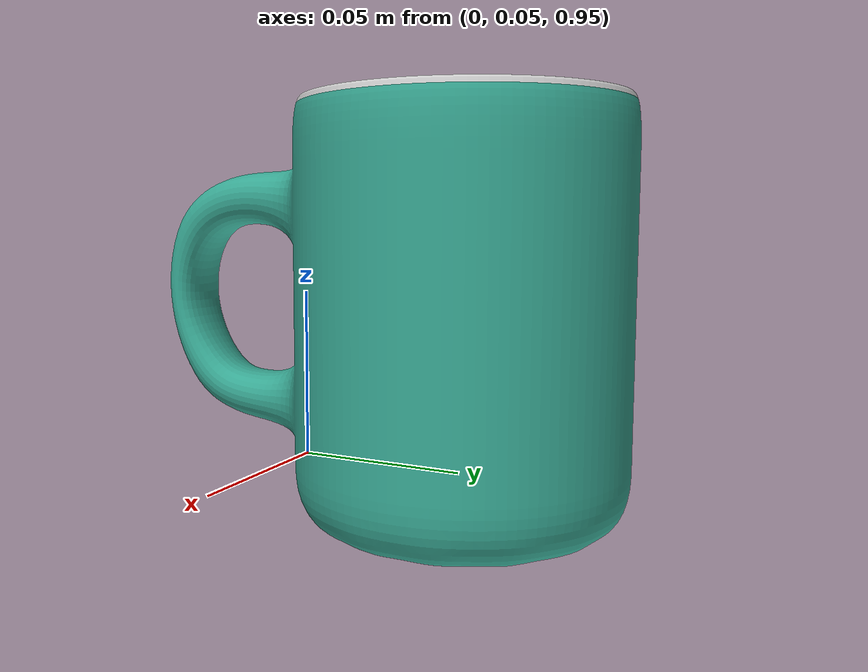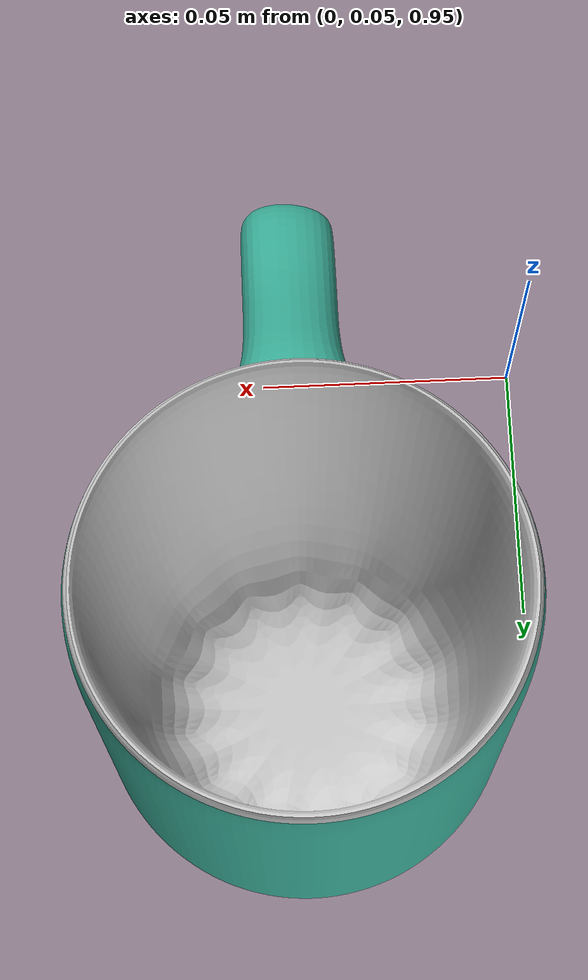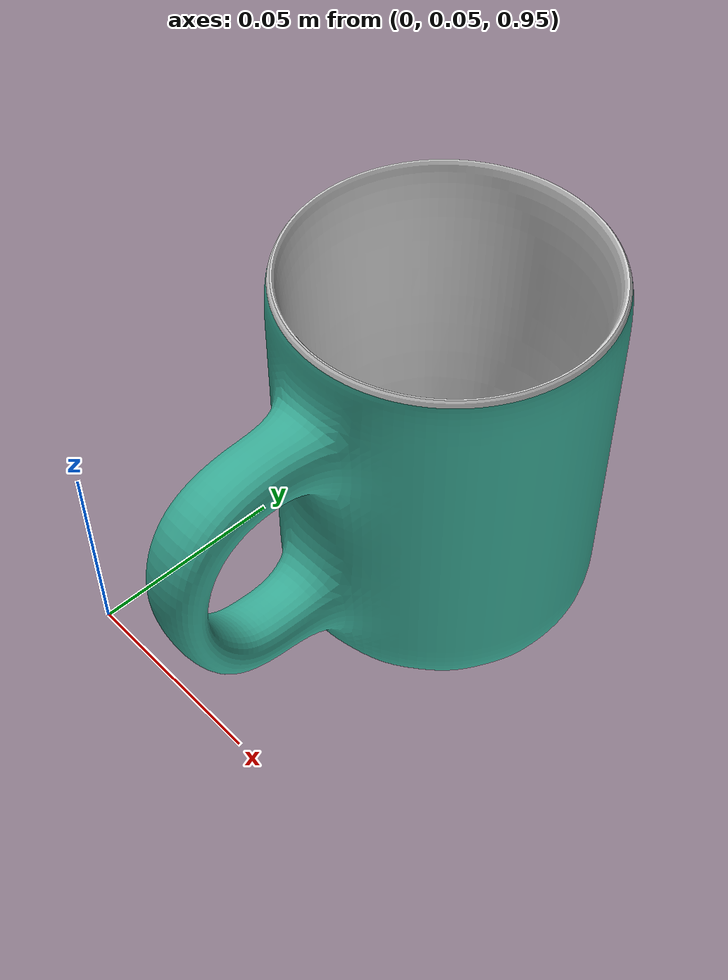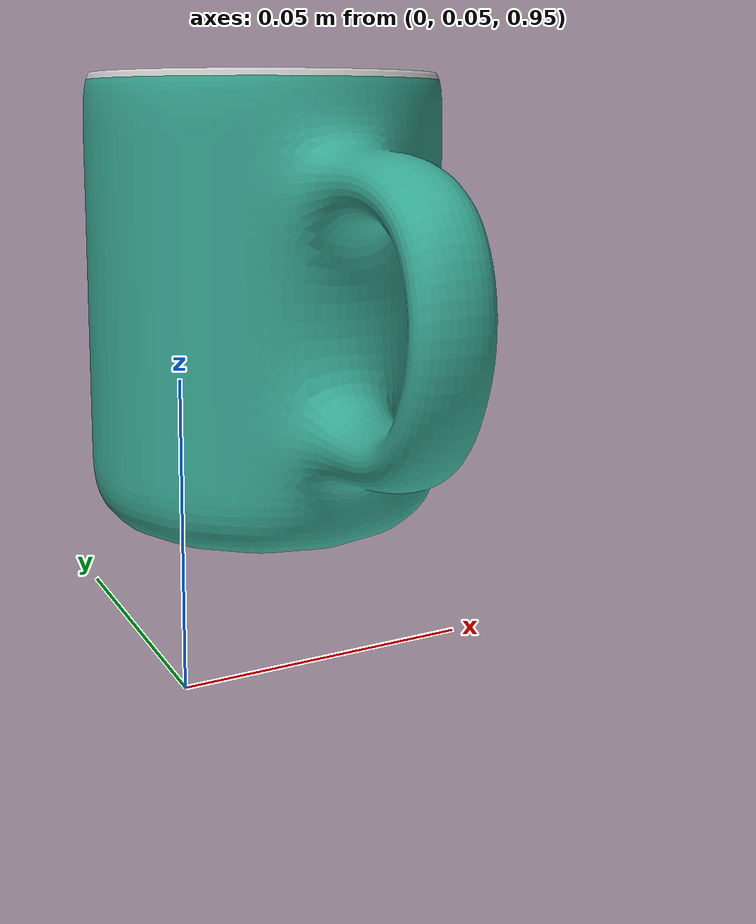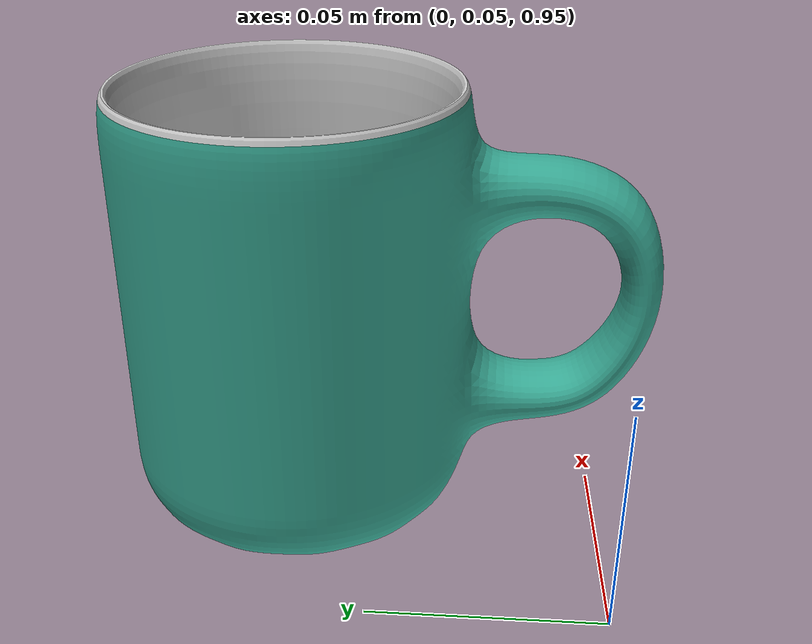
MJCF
<?xml version='1.0' encoding='utf-8'?>
<mujoco model="mug_15">

  <asset>
        <material name="mug_15_Mat.003" shininess="0.00226274" rgba="0.2211 0.67 0.587702 1" />
    <material name="mug_15_material.083" shininess="0.00226274" rgba="0.8 0.8 0.8 1" />
    <mesh name="mug_15_model_normalized_0_vis" content_type="model/obj" file="assets/objects/objaverse/mug/mug_15/visual/model_normalized_0.obj" inertia="shell" refquat="0.14673 0 0 0.989177" scale="0.115 0.115 0.115" />
    <mesh name="mug_15_model_normalized_1_vis" content_type="model/obj" file="assets/objects/objaverse/mug/mug_15/visual/model_normalized_1.obj" inertia="shell" refquat="0.14673 0 0 0.989177" scale="0.115 0.115 0.115" />
    <mesh name="mug_15_model_normalized_collision_22._coll" content_type="model/obj" file="assets/objects/objaverse/mug/mug_15/collision/model_normalized_collision_22.obj" inertia="shell" refquat="0.14673 0 0 0.989177" scale="0.115 0.115 0.115" />
    <mesh name="mug_15_model_normalized_collision_23._coll" content_type="model/obj" file="assets/objects/objaverse/mug/mug_15/collision/model_normalized_collision_23.obj" inertia="shell" refquat="0.14673 0 0 0.989177" scale="0.115 0.115 0.115" />
    <mesh name="mug_15_model_normalized_collision_21._coll" content_type="model/obj" file="assets/objects/objaverse/mug/mug_15/collision/model_normalized_collision_21.obj" inertia="shell" refquat="0.14673 0 0 0.989177" scale="0.115 0.115 0.115" />
    <mesh name="mug_15_model_normalized_collision_20._coll" content_type="model/obj" file="assets/objects/objaverse/mug/mug_15/collision/model_normalized_collision_20.obj" inertia="shell" refquat="0.14673 0 0 0.989177" scale="0.115 0.115 0.115" />
    <mesh name="mug_15_model_normalized_collision_24._coll" content_type="model/obj" file="assets/objects/objaverse/mug/mug_15/collision/model_normalized_collision_24.obj" inertia="shell" refquat="0.14673 0 0 0.989177" scale="0.115 0.115 0.115" />
    <mesh name="mug_15_model_normalized_collision_30._coll" content_type="model/obj" file="assets/objects/objaverse/mug/mug_15/collision/model_normalized_collision_30.obj" inertia="shell" refquat="0.14673 0 0 0.989177" scale="0.115 0.115 0.115" />
    <mesh name="mug_15_model_normalized_collision_18._coll" content_type="model/obj" file="assets/objects/objaverse/mug/mug_15/collision/model_normalized_collision_18.obj" inertia="shell" refquat="0.14673 0 0 0.989177" scale="0.115 0.115 0.115" />
    <mesh name="mug_15_model_normalized_collision_19._coll" content_type="model/obj" file="assets/objects/objaverse/mug/mug_15/collision/model_normalized_collision_19.obj" inertia="shell" refquat="0.14673 0 0 0.989177" scale="0.115 0.115 0.115" />
    <mesh name="mug_15_model_normalized_collision_31._coll" content_type="model/obj" file="assets/objects/objaverse/mug/mug_15/collision/model_normalized_collision_31.obj" inertia="shell" refquat="0.14673 0 0 0.989177" scale="0.115 0.115 0.115" />
    <mesh name="mug_15_model_normalized_collision_25._coll" content_type="model/obj" file="assets/objects/objaverse/mug/mug_15/collision/model_normalized_collision_25.obj" inertia="shell" refquat="0.14673 0 0 0.989177" scale="0.115 0.115 0.115" />
    <mesh name="mug_15_model_normalized_collision_27._coll" content_type="model/obj" file="assets/objects/objaverse/mug/mug_15/collision/model_normalized_collision_27.obj" inertia="shell" refquat="0.14673 0 0 0.989177" scale="0.115 0.115 0.115" />
    <mesh name="mug_15_model_normalized_collision_26._coll" content_type="model/obj" file="assets/objects/objaverse/mug/mug_15/collision/model_normalized_collision_26.obj" inertia="shell" refquat="0.14673 0 0 0.989177" scale="0.115 0.115 0.115" />
    <mesh name="mug_15_model_normalized_collision_9._coll" content_type="model/obj" file="assets/objects/objaverse/mug/mug_15/collision/model_normalized_collision_9.obj" inertia="shell" refquat="0.14673 0 0 0.989177" scale="0.115 0.115 0.115" />
    <mesh name="mug_15_model_normalized_collision_8._coll" content_type="model/obj" file="assets/objects/objaverse/mug/mug_15/collision/model_normalized_collision_8.obj" inertia="shell" refquat="0.14673 0 0 0.989177" scale="0.115 0.115 0.115" />
    <mesh name="mug_15_model_normalized_collision_6._coll" content_type="model/obj" file="assets/objects/objaverse/mug/mug_15/collision/model_normalized_collision_6.obj" inertia="shell" refquat="0.14673 0 0 0.989177" scale="0.115 0.115 0.115" />
    <mesh name="mug_15_model_normalized_collision_7._coll" content_type="model/obj" file="assets/objects/objaverse/mug/mug_15/collision/model_normalized_collision_7.obj" inertia="shell" refquat="0.14673 0 0 0.989177" scale="0.115 0.115 0.115" />
    <mesh name="mug_15_model_normalized_collision_5._coll" content_type="model/obj" file="assets/objects/objaverse/mug/mug_15/collision/model_normalized_collision_5.obj" inertia="shell" refquat="0.14673 0 0 0.989177" scale="0.115 0.115 0.115" />
    <mesh name="mug_15_model_normalized_collision_4._coll" content_type="model/obj" file="assets/objects/objaverse/mug/mug_15/collision/model_normalized_collision_4.obj" inertia="shell" refquat="0.14673 0 0 0.989177" scale="0.115 0.115 0.115" />
    <mesh name="mug_15_model_normalized_collision_0._coll" content_type="model/obj" file="assets/objects/objaverse/mug/mug_15/collision/model_normalized_collision_0.obj" inertia="shell" refquat="0.14673 0 0 0.989177" scale="0.115 0.115 0.115" />
    <mesh name="mug_15_model_normalized_collision_1._coll" content_type="model/obj" file="assets/objects/objaverse/mug/mug_15/collision/model_normalized_collision_1.obj" inertia="shell" refquat="0.14673 0 0 0.989177" scale="0.115 0.115 0.115" />
    <mesh name="mug_15_model_normalized_collision_3._coll" content_type="model/obj" file="assets/objects/objaverse/mug/mug_15/collision/model_normalized_collision_3.obj" inertia="shell" refquat="0.14673 0 0 0.989177" scale="0.115 0.115 0.115" />
    <mesh name="mug_15_model_normalized_collision_2._coll" content_type="model/obj" file="assets/objects/objaverse/mug/mug_15/collision/model_normalized_collision_2.obj" inertia="shell" refquat="0.14673 0 0 0.989177" scale="0.115 0.115 0.115" />
    <mesh name="mug_15_model_normalized_collision_17._coll" content_type="model/obj" file="assets/objects/objaverse/mug/mug_15/collision/model_normalized_collision_17.obj" inertia="shell" refquat="0.14673 0 0 0.989177" scale="0.115 0.115 0.115" />
    <mesh name="mug_15_model_normalized_collision_16._coll" content_type="model/obj" file="assets/objects/objaverse/mug/mug_15/collision/model_normalized_collision_16.obj" inertia="shell" refquat="0.14673 0 0 0.989177" scale="0.115 0.115 0.115" />
    <mesh name="mug_15_model_normalized_collision_28._coll" content_type="model/obj" file="assets/objects/objaverse/mug/mug_15/collision/model_normalized_collision_28.obj" inertia="shell" refquat="0.14673 0 0 0.989177" scale="0.115 0.115 0.115" />
    <mesh name="mug_15_model_normalized_collision_14._coll" content_type="model/obj" file="assets/objects/objaverse/mug/mug_15/collision/model_normalized_collision_14.obj" inertia="shell" refquat="0.14673 0 0 0.989177" scale="0.115 0.115 0.115" />
    <mesh name="mug_15_model_normalized_collision_15._coll" content_type="model/obj" file="assets/objects/objaverse/mug/mug_15/collision/model_normalized_collision_15.obj" inertia="shell" refquat="0.14673 0 0 0.989177" scale="0.115 0.115 0.115" />
    <mesh name="mug_15_model_normalized_collision_29._coll" content_type="model/obj" file="assets/objects/objaverse/mug/mug_15/collision/model_normalized_collision_29.obj" inertia="shell" refquat="0.14673 0 0 0.989177" scale="0.115 0.115 0.115" />
    <mesh name="mug_15_model_normalized_collision_11._coll" content_type="model/obj" file="assets/objects/objaverse/mug/mug_15/collision/model_normalized_collision_11.obj" inertia="shell" refquat="0.14673 0 0 0.989177" scale="0.115 0.115 0.115" />
    <mesh name="mug_15_model_normalized_collision_10._coll" content_type="model/obj" file="assets/objects/objaverse/mug/mug_15/collision/model_normalized_collision_10.obj" inertia="shell" refquat="0.14673 0 0 0.989177" scale="0.115 0.115 0.115" />
    <mesh name="mug_15_model_normalized_collision_12._coll" content_type="model/obj" file="assets/objects/objaverse/mug/mug_15/collision/model_normalized_collision_12.obj" inertia="shell" refquat="0.14673 0 0 0.989177" scale="0.115 0.115 0.115" />
    <mesh name="mug_15_model_normalized_collision_13._coll" content_type="model/obj" file="assets/objects/objaverse/mug/mug_15/collision/model_normalized_collision_13.obj" inertia="shell" refquat="0.14673 0 0 0.989177" scale="0.115 0.115 0.115" />
  </asset>

  <worldbody>
    <body name="object_mug_15" pos="0.05 0.1 1.0">
      <joint name="object_mug_15_joint0" type="free" damping="0.0005" />
      <geom name="object_mug_15_g0" type="mesh" contype="0" conaffinity="0" group="1" friction="0.95 0.3 0.1" solref="0.001 2" solimp="0.998 0.998" material="mug_15_material.083" mesh="mug_15_model_normalized_0_vis" />
      <geom name="object_mug_15_g1" type="mesh" contype="0" conaffinity="0" group="1" friction="0.95 0.3 0.1" solref="0.001 2" solimp="0.998 0.998" material="mug_15_Mat.003" mesh="mug_15_model_normalized_1_vis" />
      <geom name="object_mug_15_g2" type="mesh" friction="0.95 0.3 0.1" solref="0.001 2" solimp="0.998 0.998" rgba="0.8 0.8 0.8 0" mesh="mug_15_model_normalized_collision_22._coll" />
      <geom name="object_mug_15_g3" type="mesh" friction="0.95 0.3 0.1" solref="0.001 2" solimp="0.998 0.998" rgba="0.8 0.8 0.8 0" mesh="mug_15_model_normalized_collision_23._coll" />
      <geom name="object_mug_15_g4" type="mesh" friction="0.95 0.3 0.1" solref="0.001 2" solimp="0.998 0.998" rgba="0.8 0.8 0.8 0" mesh="mug_15_model_normalized_collision_21._coll" />
      <geom name="object_mug_15_g5" type="mesh" friction="0.95 0.3 0.1" solref="0.001 2" solimp="0.998 0.998" rgba="0.8 0.8 0.8 0" mesh="mug_15_model_normalized_collision_20._coll" />
      <geom name="object_mug_15_g6" type="mesh" friction="0.95 0.3 0.1" solref="0.001 2" solimp="0.998 0.998" rgba="0.8 0.8 0.8 0" mesh="mug_15_model_normalized_collision_24._coll" />
      <geom name="object_mug_15_g7" type="mesh" friction="0.95 0.3 0.1" solref="0.001 2" solimp="0.998 0.998" rgba="0.8 0.8 0.8 0" mesh="mug_15_model_normalized_collision_30._coll" />
      <geom name="object_mug_15_g8" type="mesh" friction="0.95 0.3 0.1" solref="0.001 2" solimp="0.998 0.998" rgba="0.8 0.8 0.8 0" mesh="mug_15_model_normalized_collision_18._coll" />
      <geom name="object_mug_15_g9" type="mesh" friction="0.95 0.3 0.1" solref="0.001 2" solimp="0.998 0.998" rgba="0.8 0.8 0.8 0" mesh="mug_15_model_normalized_collision_19._coll" />
      <geom name="object_mug_15_g10" type="mesh" friction="0.95 0.3 0.1" solref="0.001 2" solimp="0.998 0.998" rgba="0.8 0.8 0.8 0" mesh="mug_15_model_normalized_collision_31._coll" />
      <geom name="object_mug_15_g11" type="mesh" friction="0.95 0.3 0.1" solref="0.001 2" solimp="0.998 0.998" rgba="0.8 0.8 0.8 0" mesh="mug_15_model_normalized_collision_25._coll" />
      <geom name="object_mug_15_g12" type="mesh" friction="0.95 0.3 0.1" solref="0.001 2" solimp="0.998 0.998" rgba="0.8 0.8 0.8 0" mesh="mug_15_model_normalized_collision_27._coll" />
      <geom name="object_mug_15_g13" type="mesh" friction="0.95 0.3 0.1" solref="0.001 2" solimp="0.998 0.998" rgba="0.8 0.8 0.8 0" mesh="mug_15_model_normalized_collision_26._coll" />
      <geom name="object_mug_15_g14" type="mesh" friction="0.95 0.3 0.1" solref="0.001 2" solimp="0.998 0.998" rgba="0.8 0.8 0.8 0" mesh="mug_15_model_normalized_collision_9._coll" />
      <geom name="object_mug_15_g15" type="mesh" friction="0.95 0.3 0.1" solref="0.001 2" solimp="0.998 0.998" rgba="0.8 0.8 0.8 0" mesh="mug_15_model_normalized_collision_8._coll" />
      <geom name="object_mug_15_g16" type="mesh" friction="0.95 0.3 0.1" solref="0.001 2" solimp="0.998 0.998" rgba="0.8 0.8 0.8 0" mesh="mug_15_model_normalized_collision_6._coll" />
      <geom name="object_mug_15_g17" type="mesh" friction="0.95 0.3 0.1" solref="0.001 2" solimp="0.998 0.998" rgba="0.8 0.8 0.8 0" mesh="mug_15_model_normalized_collision_7._coll" />
      <geom name="object_mug_15_g18" type="mesh" friction="0.95 0.3 0.1" solref="0.001 2" solimp="0.998 0.998" rgba="0.8 0.8 0.8 0" mesh="mug_15_model_normalized_collision_5._coll" />
      <geom name="object_mug_15_g19" type="mesh" friction="0.95 0.3 0.1" solref="0.001 2" solimp="0.998 0.998" rgba="0.8 0.8 0.8 0" mesh="mug_15_model_normalized_collision_4._coll" />
      <geom name="object_mug_15_g20" type="mesh" friction="0.95 0.3 0.1" solref="0.001 2" solimp="0.998 0.998" rgba="0.8 0.8 0.8 0" mesh="mug_15_model_normalized_collision_0._coll" />
      <geom name="object_mug_15_g21" type="mesh" friction="0.95 0.3 0.1" solref="0.001 2" solimp="0.998 0.998" rgba="0.8 0.8 0.8 0" mesh="mug_15_model_normalized_collision_1._coll" />
      <geom name="object_mug_15_g22" type="mesh" friction="0.95 0.3 0.1" solref="0.001 2" solimp="0.998 0.998" rgba="0.8 0.8 0.8 0" mesh="mug_15_model_normalized_collision_3._coll" />
      <geom name="object_mug_15_g23" type="mesh" friction="0.95 0.3 0.1" solref="0.001 2" solimp="0.998 0.998" rgba="0.8 0.8 0.8 0" mesh="mug_15_model_normalized_collision_2._coll" />
      <geom name="object_mug_15_g24" type="mesh" friction="0.95 0.3 0.1" solref="0.001 2" solimp="0.998 0.998" rgba="0.8 0.8 0.8 0" mesh="mug_15_model_normalized_collision_17._coll" />
      <geom name="object_mug_15_g25" type="mesh" friction="0.95 0.3 0.1" solref="0.001 2" solimp="0.998 0.998" rgba="0.8 0.8 0.8 0" mesh="mug_15_model_normalized_collision_16._coll" />
      <geom name="object_mug_15_g26" type="mesh" friction="0.95 0.3 0.1" solref="0.001 2" solimp="0.998 0.998" rgba="0.8 0.8 0.8 0" mesh="mug_15_model_normalized_collision_28._coll" />
      <geom name="object_mug_15_g27" type="mesh" friction="0.95 0.3 0.1" solref="0.001 2" solimp="0.998 0.998" rgba="0.8 0.8 0.8 0" mesh="mug_15_model_normalized_collision_14._coll" />
      <geom name="object_mug_15_g28" type="mesh" friction="0.95 0.3 0.1" solref="0.001 2" solimp="0.998 0.998" rgba="0.8 0.8 0.8 0" mesh="mug_15_model_normalized_collision_15._coll" />
      <geom name="object_mug_15_g29" type="mesh" friction="0.95 0.3 0.1" solref="0.001 2" solimp="0.998 0.998" rgba="0.8 0.8 0.8 0" mesh="mug_15_model_normalized_collision_29._coll" />
      <geom name="object_mug_15_g30" type="mesh" friction="0.95 0.3 0.1" solref="0.001 2" solimp="0.998 0.998" rgba="0.8 0.8 0.8 0" mesh="mug_15_model_normalized_collision_11._coll" />
      <geom name="object_mug_15_g31" type="mesh" friction="0.95 0.3 0.1" solref="0.001 2" solimp="0.998 0.998" rgba="0.8 0.8 0.8 0" mesh="mug_15_model_normalized_collision_10._coll" />
      <geom name="object_mug_15_g32" type="mesh" friction="0.95 0.3 0.1" solref="0.001 2" solimp="0.998 0.998" rgba="0.8 0.8 0.8 0" mesh="mug_15_model_normalized_collision_12._coll" />
      <geom name="object_mug_15_g33" type="mesh" friction="0.95 0.3 0.1" solref="0.001 2" solimp="0.998 0.998" rgba="0.8 0.8 0.8 0" mesh="mug_15_model_normalized_collision_13._coll" />
      <site name="object_mug_15_default_site" pos="0 0 0" size="0.002" rgba="1 0 0 0" />
    </body>
  </worldbody>
</mujoco>
